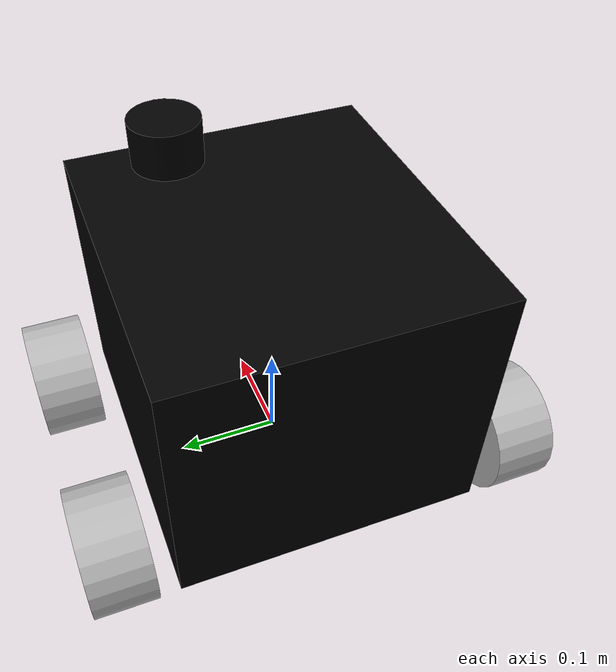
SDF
<?xml version="1.0" ?>
<sdf version="1.5">
  <model name="donatello">
    <static>false</static>

    <!-- ****************** ROBOT BASE FOOTPRINT ***************************  -->
    <pose>0.0 0.0 0.0 0.0 0.0 0.0</pose>
    <link name="base_footprint"/>

    <!-- ********************** ROBOT BASE *********************************  -->
    <link name="base_link">

      <collision name="base_collision">
        <pose>0 0 0.14875 0 0 0</pose>
        <geometry>
          <box>
            <size>0.325 0.30 0.2575</size>
          </box>
        </geometry>
      </collision>

      <visual name="base_visual">
        <pose>0 0 0.13875 0 0 0</pose>
        <geometry>
          <box>
            <size>0.325 0.30 0.2575</size>
          </box>
        </geometry>

        <material>
          <ambient>0.0 0.0 0.0 1.0</ambient>
          <diffuse>0.0 0.0 0.0 1.0</diffuse>
          <specular>0.0 0.0 0.0 1.0</specular>
          <emissive>0.0 0.0 0.0 1.0</emissive>
        </material>
      </visual>

    </link>

    <!-- *********************** IMU SENSOR SETUP **************************  -->
    <link name="imu_link">
      <gravity>true</gravity>
      <sensor name="mpu_imu" type="imu">
        <always_on>true</always_on>
        <update_rate>400</update_rate>
        <visualize>true</visualize>
        <imu>
          <orientation>
            <x>
              <noise type="gaussian">
                <mean>0.0</mean>
                <stddev>2e-3</stddev>
              </noise>
            </x>
            <y>
              <noise type="gaussian">
                <mean>0.0</mean>
                <stddev>2e-3</stddev>
              </noise>
            </y>
            <z>
              <noise type="gaussian">
                <mean>0.0</mean>
                <stddev>2e-3</stddev>
              </noise>
            </z>
          </orientation>
          <angular_velocity>
            <x>
              <noise type="gaussian">
                <mean>0.0</mean>
                <stddev>2e-4</stddev>
              </noise>
            </x>
            <y>
              <noise type="gaussian">
                <mean>0.0</mean>
                <stddev>2e-4</stddev>
              </noise>
            </y>
            <z>
              <noise type="gaussian">
                <mean>0.0</mean>
                <stddev>2e-4</stddev>
              </noise>
            </z>
          </angular_velocity>
          <linear_acceleration>
            <x>
              <noise type="gaussian">
                <mean>0.0</mean>
                <stddev>1.7e-2</stddev>
              </noise>
            </x>
            <y>
              <noise type="gaussian">
                <mean>0.0</mean>
                <stddev>1.7e-2</stddev>
              </noise>
            </y>
            <z>
              <noise type="gaussian">
                <mean>0.0</mean>
                <stddev>1.7e-2</stddev>
              </noise>
            </z>
          </linear_acceleration>
        </imu>
        <plugin name="basic_mobile_bot_imu" filename="libgazebo_ros_imu_sensor.so">
          <initial_orientation_as_reference>false</initial_orientation_as_reference>
          <frame_name>imu_link</frame_name>
          <ros>
            <namespace>/imu</namespace>
            <remapping>~/out:=data</remapping>
          </ros>
        </plugin>
      </sensor>
    </link>

  <!-- ****************************** LIDAR *****************************    -->
  <link name="lidar_link">
    <inertial>
      <pose>0.1275 0.057 0.285 0 0 0</pose>
      <inertia>
        <ixx>0.001</ixx>
        <ixy>0.000</ixy>
        <ixz>0.000</ixz>
        <iyy>0.001</iyy>
        <iyz>0.000</iyz>
        <izz>0.001</izz>
      </inertia>
      <mass>0.17</mass>
    </inertial>

    <collision name="lidar_collision">
      <pose>0.1275 0.057 0.285 0 0 0</pose>
      <geometry>
        <cylinder>
          <radius>0.035</radius>
          <length>0.055</length>
        </cylinder>
      </geometry>
    </collision>

    <visual name="lidar_visual">
      <pose>0.1275 0.057 0.285 0 0 0</pose>
      <geometry>
        <cylinder>
          <radius>0.035</radius>
          <length>0.055</length>
        </cylinder>
      </geometry>
      <material>
        <ambient>0.0 0.0 0.0 1.0</ambient>
        <diffuse>0.0 0.0 0.0 1.0</diffuse>
        <specular>0.0 0.0 0.0 1.0</specular>
        <emissive>0.0 0.0 0.0 1.0</emissive>
      </material>
    </visual>

    <sensor name="lidar" type="ray">
      <pose>0.1275 0.057 0.285 0 0 -1.570796</pose>
      <always_on>true</always_on>
      <visualize>true</visualize>
      <update_rate>10</update_rate>
      <ray>
        <scan>
          <horizontal>
            <samples>360</samples>
            <resolution>1.00000</resolution>
            <min_angle>0</min_angle>
            <max_angle>3.14</max_angle>
          </horizontal>
        </scan>
        <range>
          <min>0.150000</min>
          <max>3.5</max>
          <resolution>0.015000</resolution>
        </range>
        <noise>
          <type>gaussian</type>
          <mean>0.0</mean>
          <stddev>0.01</stddev>
        </noise>
      </ray>
      <plugin name="scan" filename="libgazebo_ros_ray_sensor.so">
        <ros>
          <remapping>~/out:=scan</remapping>
        </ros>
        <output_type>sensor_msgs/LaserScan</output_type>
        <frame_name>lidar_link</frame_name>
      </plugin>
    </sensor>
  </link>
    <!-- *********************** DRIVE WHEELS ******************************  -->
    <link name="drivewhl_l_link">
      <pose>-0.1125 0.2 0.04 0 1.570796 1.570796</pose>

      <collision name="drivewhl_l_collision">
        <geometry>
          <cylinder>
            <radius>0.06</radius>
            <length>0.06</length>
          </cylinder>
        </geometry>
        <surface>
          <friction>
            <ode>
              <mu>0.7</mu>
              <mu2>0.7</mu2>
            </ode>
          </friction>
        </surface>

      </collision>

      <visual name="drivewhl_l_visual">
        <geometry>
          <cylinder>
            <radius>0.06</radius>
            <length>0.06</length>
          </cylinder>
        </geometry>
      </visual>
    </link>

    <link name="drivewhl_r_link">
      <pose>-0.1125 -0.2 0.04 0 1.570796 1.570796</pose>

      <collision name="drivewhl_r_collision">
        <geometry>
          <cylinder>
            <radius>0.06</radius>
            <length>0.06</length>
          </cylinder>
        </geometry>
        <surface>
          <friction>
            <ode>
              <mu>0.7</mu>
              <mu2>0.7</mu2>
            </ode>
          </friction>
        </surface>
      </collision>

      <visual name="drivewhl_r_visual">
        <geometry>
          <cylinder>
            <radius>0.06</radius>
            <length>0.06</length>
          </cylinder>
        </geometry>
      </visual>
    </link>

    <!-- *********************** IDOL WHEELS ******************************  -->
    <link name='idolwhl_l'>
      <pose>0.1125 0.2 0.04 0 1.570796 1.570796</pose>
      <collision name='collision'>
        <geometry>
          <cylinder>
            <radius>0.06</radius>
            <length>0.06</length>
          </cylinder>
        </geometry>
        <surface>
          <friction>
            <ode>
              <mu>0.01</mu>
              <mu2>0.01</mu2>
              <slip1>0.0</slip1>
              <slip2>0.0</slip2>
            </ode>
          </friction>
        </surface>
      </collision>

      <visual name="idolwhl_l_visual">
        <geometry>
          <cylinder>
            <radius>0.06</radius>
            <length>0.06</length>
          </cylinder>
        </geometry>
      </visual>

    </link>

    <link name='idolwhl_r'>
      <pose>0.1125 -0.2 0.04 0 1.570796 1.570796</pose>
      <collision name='collision'>
        <geometry>
          <cylinder>
            <radius>0.06</radius>
            <length>0.06</length>
          </cylinder>
        </geometry>
        <surface>
          <friction>
            <ode>
              <mu>0.01</mu>
              <mu2>0.01</mu2>
              <slip1>0.0</slip1>
              <slip2>0.0</slip2>
            </ode>
          </friction>
        </surface>
      </collision>

      <visual name="idolwhl_r_visual">
        <geometry>
          <cylinder>
            <radius>0.06</radius>
            <length>0.06</length>
          </cylinder>
        </geometry>
      </visual>

    </link>

    <!-- ************************ JOINTS ***********************************  -->
    <!-- Pose of the joint is the same as the child link frame -->
    <!-- Axis is the axis of rotation relative to the child link frame -->

    <joint name="base_joint" type="fixed">
      <parent>base_footprint</parent>
      <child>base_link</child>
      <pose>0 0 0.01 0 0 0</pose>
    </joint>

    <joint name="drivewhl_l_joint" type="revolute">
      <parent>base_link</parent>
      <child>drivewhl_l_link</child>
      <pose>0 0 0 0 0 0</pose>
      <axis>
        <xyz>0 0 1</xyz>
      </axis>
    </joint>

    <joint name="drivewhl_r_joint" type="revolute">
      <parent>base_link</parent>
      <child>drivewhl_r_link</child>
      <pose>0 0 0 0 0 0</pose>
      <axis>
        <xyz>0 0 1</xyz>
      </axis>
    </joint>

    <joint name='idolwhl_l_joint' type='fixed'>
      <parent>base_link</parent>
      <child>idolwhl_l</child>
      <pose>0 0 0 0 0 0</pose>
    </joint>

    <joint name='idolwhl_r_joint' type='fixed'>
      <parent>base_link</parent>
      <child>idolwhl_r</child>
      <pose>0 0 0 0 0 0</pose>
    </joint>

    <joint name="imu_joint" type="fixed">
      <parent>base_link</parent>
      <child>imu_link</child>
      <pose>0 0 0 0 0 0</pose>
    </joint>

    <joint name="lidar_joint" type="fixed">
      <parent>base_footprint</parent>
      <child>lidar_link</child>
      <pose>0 0 0 0 0 0</pose>
    </joint>

   <!-- *********************** WHEEL ODOMETRY ***************************    -->
    <plugin name="basic_mobile_bot_diff_drive" filename="libgazebo_ros_diff_drive.so">

      <update_rate>50</update_rate>

      <!-- wheels -->
      <left_joint>drivewhl_l_joint</left_joint>
      <right_joint>drivewhl_r_joint</right_joint>

      <!-- kinematics -->
      <wheel_separation>0.35</wheel_separation>
      <wheel_diameter>0.12</wheel_diameter>

      <!-- limits -->
      <max_wheel_torque>10</max_wheel_torque>
      <max_wheel_acceleration>0.5</max_wheel_acceleration>

      <!-- Receive velocity commands on this ROS topic -->
      <command_topic>cmd_vel</command_topic>

      <!-- output -->
      <!-- When false, publish no wheel odometry data to a ROS topic -->
      <publish_odom>true</publish_odom>

      <!-- When true, publish coordinate transform from odom to base_footprint -->
      <!-- I usually use the robot_localization package to publish this transform -->
      <publish_odom_tf>false</publish_odom_tf>

      <!-- When true, publish coordinate transform from base_link to the wheels -->
      <!-- The robot_state_publisher package is often used to publish this transform -->
      <publish_wheel_tf>false</publish_wheel_tf>

      <odometry_topic>odom</odometry_topic>
      <odometry_frame>odom</odometry_frame>
      <robot_base_frame>base_footprint</robot_base_frame>

      <!-- Odometry source, 0 for ENCODER, 1 for WORLD, defaults to WORLD -->
      <odometry_source>1</odometry_source>

      <!-- Change the ROS topic we will publish the odometry data to -->
      <ros>
        <remapping>odom:=wheel/odometry</remapping>
      </ros>

    </plugin>

   <!-- *********************** JOINT STATE PUBLISHER *********************   -->

    <plugin name="basic_mobile_bot_joint_state" filename="libgazebo_ros_joint_state_publisher.so">
      <ros>
        <remapping>~/out:=joint_states</remapping>
      </ros>
      <update_rate>50</update_rate>
      <joint_name>drivewhl_l_joint</joint_name>
      <joint_name>drivewhl_r_joint</joint_name>
    </plugin>

  </model>
</sdf>
